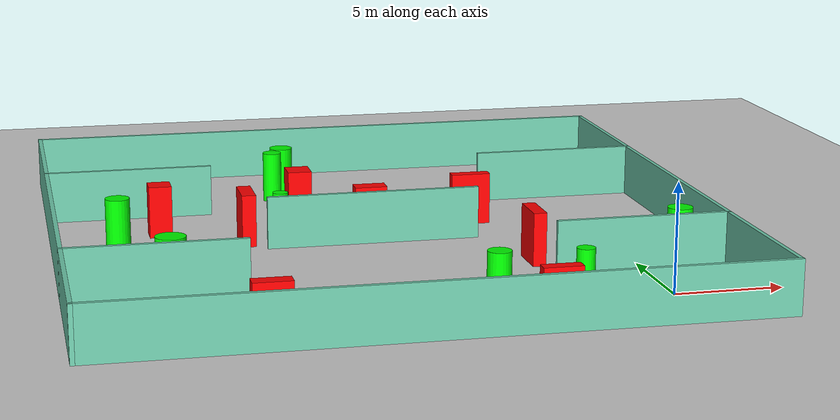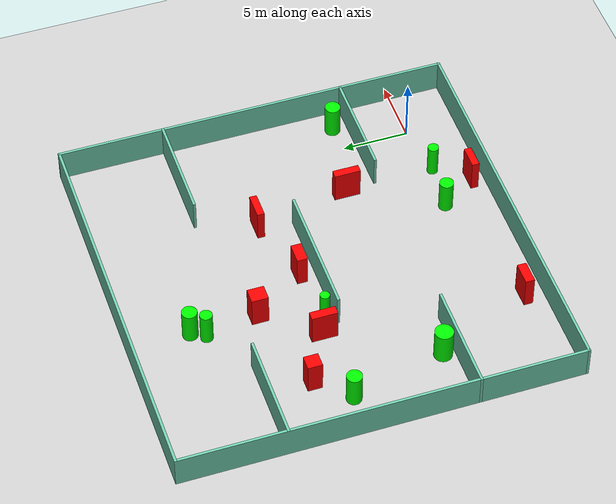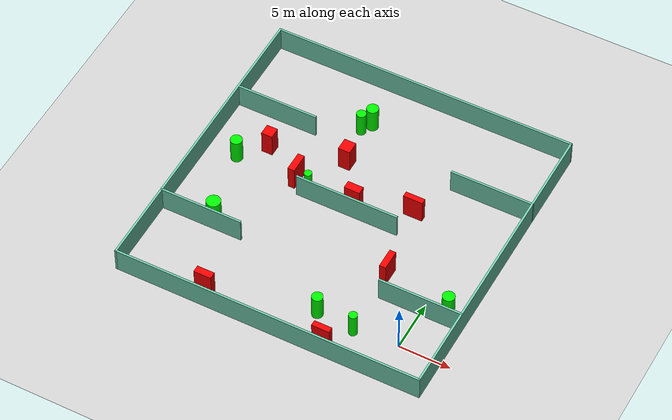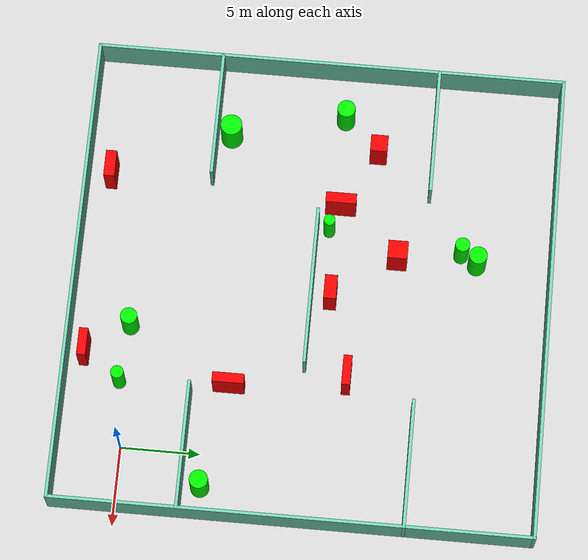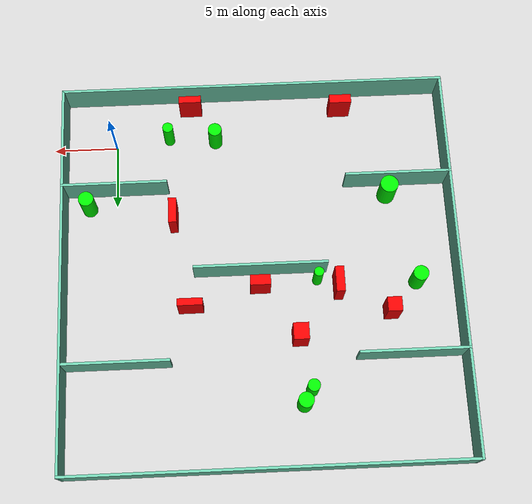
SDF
<sdf version="1.7">
 <world name="default">
  <light name="sun" type="directional">
   <pose>0 0 10 0 -0 0</pose>
   <diffuse>0.8 0.8 0.8 1</diffuse>
   <specular>0.2 0.2 0.2 1</specular>
   <attenuation>
    <range>1000</range>
    <constant>0.9</constant>
    <linear>0.01</linear>
    <quadratic>0.001</quadratic>
   </attenuation>
   <direction>-0.5 0.1 -0.9</direction>
   <spot><inner_angle>0</inner_angle><outer_angle>0</outer_angle><falloff>0</falloff></spot>
  </light>
  <model name="ground_plane">
   <static>1</static>
   <link name="link">
    <collision name="collision">
     <geometry><plane><normal>0 0 1</normal><size>100 100</size></plane></geometry>
     <surface>
      <contact><collide_bitmask>65535</collide_bitmask></contact>
      <friction><ode><mu>100</mu><mu2>50</mu2></ode></friction>
     </surface>
    </collision>
    <visual name="visual">
     <cast_shadows>0</cast_shadows>
     <geometry><plane><normal>0 0 1</normal><size>100 100</size></plane></geometry>
     <material>
      <script><uri>file://media/materials/scripts/gazebo.material</uri><name>Gazebo/Grey</name></script>
     </material>
    </visual>
   </link>
  </model>
  <gravity>0 0 -9.8</gravity>
  <magnetic_field>6e-06 2.3e-05 -4.2e-05</magnetic_field>
  <atmosphere type="adiabatic"/>
  <physics type="ode">
   <max_step_size>0.001</max_step_size>
   <real_time_factor>1</real_time_factor>
   <real_time_update_rate>1000</real_time_update_rate>
  </physics>
  <scene><ambient>0.4 0.4 0.4 1</ambient><background>0.7 0.7 0.7 1</background><shadows>1</shadows></scene>
  <spherical_coordinates>
   <surface_model>EARTH_WGS84</surface_model>
   <latitude_deg>0</latitude_deg>
   <longitude_deg>0</longitude_deg>
   <elevation>0</elevation>
   <heading_deg>0</heading_deg>
  </spherical_coordinates>
  <model name="my_base_walls">
   <link name="Wall_10">
    <collision name="Wall_10_Collision">
     <geometry><box><size>8.2 0.2 2.5</size></box></geometry>
     <pose>0 0 1.25 0 -0 0</pose>
    </collision>
    <visual name="Wall_10_Visual">
     <pose>0 0 1.25 0 -0 0</pose>
     <geometry><box><size>8.2 0.2 2.5</size></box></geometry>
     <material>
      <script><uri>file://media/materials/scripts/gazebo.material</uri><name>Gazebo/Grey</name></script>
      <ambient>0.435294 0.796078 0.67451 1</ambient>
     </material>
     <meta><layer>0</layer></meta>
    </visual>
    <pose>-11 -7 0 0 -0 0</pose>
   </link>
   <link name="Wall_12">
    <collision name="Wall_12_Collision">
     <geometry><box><size>8.2 0.2 2.5</size></box></geometry>
     <pose>0 0 1.25 0 -0 0</pose>
    </collision>
    <visual name="Wall_12_Visual">
     <pose>0 0 1.25 0 -0 0</pose>
     <geometry><box><size>8.2 0.2 2.5</size></box></geometry>
     <material>
      <script><uri>file://media/materials/scripts/gazebo.material</uri><name>Gazebo/Grey</name></script>
      <ambient>0.435294 0.796078 0.67451 1</ambient>
     </material>
     <meta><layer>0</layer></meta>
    </visual>
    <pose>-11 7 0 0 -0 0</pose>
   </link>
   <link name="Wall_14">
    <collision name="Wall_14_Collision">
     <geometry><box><size>8.2 0.2 2.5</size></box></geometry>
     <pose>0 0 1.25 0 -0 0</pose>
    </collision>
    <visual name="Wall_14_Visual">
     <pose>0 0 1.25 0 -0 0</pose>
     <geometry><box><size>8.2 0.2 2.5</size></box></geometry>
     <material>
      <script><uri>file://media/materials/scripts/gazebo.material</uri><name>Gazebo/Grey</name></script>
      <ambient>0.435294 0.796078 0.67451 1</ambient>
     </material>
     <meta><layer>0</layer></meta>
    </visual>
    <pose>11 7 0 0 -0 3.14159</pose>
   </link>
   <link name="Wall_16">
    <collision name="Wall_16_Collision">
     <geometry><box><size>10.2 0.2 2.5</size></box></geometry>
     <pose>0 0 1.25 0 -0 0</pose>
    </collision>
    <visual name="Wall_16_Visual">
     <pose>0 0 1.25 0 -0 0</pose>
     <geometry><box><size>10.2 0.2 2.5</size></box></geometry>
     <material>
      <script><uri>file://media/materials/scripts/gazebo.material</uri><name>Gazebo/Grey</name></script>
      <ambient>0.435294 0.796078 0.67451 1</ambient>
     </material>
     <meta><layer>0</layer></meta>
    </visual>
    <pose>0 0 0 0 -0 3.14159</pose>
   </link>
   <link name="Wall_2">
    <collision name="Wall_2_Collision">
     <geometry><box><size>30.2 0.2 2.5</size></box></geometry>
     <pose>0 0 1.25 0 -0 0</pose>
    </collision>
    <visual name="Wall_2_Visual">
     <pose>0 0 1.25 0 -0 0</pose>
     <geometry><box><size>30.2 0.2 2.5</size></box></geometry>
     <material>
      <script><uri>file://media/materials/scripts/gazebo.material</uri><name>Gazebo/Grey</name></script>
      <ambient>0.435294 0.796078 0.67451 1</ambient>
     </material>
     <meta><layer>0</layer></meta>
    </visual>
    <pose>0 -15 0 0 -0 3.14159</pose>
   </link>
   <link name="Wall_3">
    <collision name="Wall_3_Collision">
     <geometry><box><size>30.2 0.2 2.5</size></box></geometry>
     <pose>0 0 1.25 0 -0 0</pose>
    </collision>
    <visual name="Wall_3_Visual">
     <pose>0 0 1.25 0 -0 0</pose>
     <geometry><box><size>30.2 0.2 2.5</size></box></geometry>
     <material>
      <script><uri>file://media/materials/scripts/gazebo.material</uri><name>Gazebo/Grey</name></script>
      <ambient>0.435294 0.796078 0.67451 1</ambient>
     </material>
     <meta><layer>0</layer></meta>
    </visual>
    <pose>-15 0 0 0 -0 1.5708</pose>
   </link>
   <link name="Wall_4">
    <collision name="Wall_4_Collision">
     <geometry><box><size>30.2 0.2 2.5</size></box></geometry>
     <pose>0 0 1.25 0 -0 0</pose>
    </collision>
    <visual name="Wall_4_Visual">
     <pose>0 0 1.25 0 -0 0</pose>
     <geometry><box><size>30.2 0.2 2.5</size></box></geometry>
     <material>
      <script><uri>file://media/materials/scripts/gazebo.material</uri><name>Gazebo/Grey</name></script>
      <ambient>0.435294 0.796078 0.67451 1</ambient>
     </material>
     <meta><layer>0</layer></meta>
    </visual>
    <pose>0 15 0 0 -0 0</pose>
   </link>
   <link name="Wall_6">
    <collision name="Wall_6_Collision">
     <geometry><box><size>30.2 0.2 2.5</size></box></geometry>
     <pose>0 0 1.25 0 -0 0</pose>
    </collision>
    <visual name="Wall_6_Visual">
     <pose>0 0 1.25 0 -0 0</pose>
     <geometry><box><size>30.2 0.2 2.5</size></box></geometry>
     <material>
      <script><uri>file://media/materials/scripts/gazebo.material</uri><name>Gazebo/Grey</name></script>
      <ambient>0.435294 0.796078 0.67451 1</ambient>
     </material>
     <meta><layer>0</layer></meta>
    </visual>
    <pose>15 0 0 0 -0 1.5708</pose>
   </link>
   <link name="Wall_8">
    <collision name="Wall_8_Collision">
     <geometry><box><size>8.2 0.2 2.5</size></box></geometry>
     <pose>0 0 1.25 0 -0 0</pose>
    </collision>
    <visual name="Wall_8_Visual">
     <pose>0 0 1.25 0 -0 0</pose>
     <geometry><box><size>8.2 0.2 2.5</size></box></geometry>
     <material>
      <script><uri>file://media/materials/scripts/gazebo.material</uri><name>Gazebo/Grey</name></script>
      <ambient>0.435294 0.796078 0.67451 1</ambient>
     </material>
     <meta><layer>0</layer></meta>
    </visual>
    <pose>11 -7 0 0 -0 3.14159</pose>
   </link>
   <static>1</static>
   <pose>-11 11 0 0 -0 0</pose>
  </model>
  <model name="cylinder1">
   <static>1</static>
   <link name="link">
    <inertial>
     <mass>1</mass>
     <inertia><ixx>0.5</ixx><ixy>0</ixy><ixz>0</ixz><iyy>0.5</iyy><iyz>0</iyz><izz>1</izz></inertia>
    </inertial>
    <collision name="collision">
     <geometry><cylinder><radius>0.5773225314749852</radius><length>2.5</length></cylinder></geometry>
    </collision>
    <visual name="visual">
     <geometry><cylinder><radius>0.5773225314749852</radius><length>2.5</length></cylinder></geometry>
     <material>
      <ambient>0 1 0 1</ambient>
      <diffuse>0 1 0 1</diffuse>
      <specular>0.1 0.1 0.1 1</specular>
      <emissive>0 0 0 0</emissive>
     </material>
    </visual>
   </link>
   <pose>-22.973979296802355 12.217746791188876 1.25 0 0 0</pose>
  </model>
  <model name="cylinder2">
   <static>1</static>
   <link name="link">
    <inertial>
     <mass>1</mass>
     <inertia><ixx>0.5</ixx><ixy>0</ixy><ixz>0</ixz><iyy>0.5</iyy><iyz>0</iyz><izz>1</izz></inertia>
    </inertial>
    <collision name="collision">
     <geometry><cylinder><radius>0.3649905188209511</radius><length>2.5</length></cylinder></geometry>
    </collision>
    <visual name="visual">
     <geometry><cylinder><radius>0.3649905188209511</radius><length>2.5</length></cylinder></geometry>
     <material>
      <ambient>0 1 0 1</ambient>
      <diffuse>0 1 0 1</diffuse>
      <specular>0.1 0.1 0.1 1</specular>
      <emissive>0 0 0 0</emissive>
     </material>
    </visual>
   </link>
   <pose>-15.35326486355281 11.778638628260074 1.25 0 0 0</pose>
  </model>
  <model name="cylinder3">
   <static>1</static>
   <link name="link">
    <inertial>
     <mass>1</mass>
     <inertia><ixx>0.5</ixx><ixy>0</ixy><ixz>0</ixz><iyy>0.5</iyy><iyz>0</iyz><izz>1</izz></inertia>
    </inertial>
    <collision name="collision">
     <geometry><cylinder><radius>0.5765608909277584</radius><length>2.5</length></cylinder></geometry>
    </collision>
    <visual name="visual">
     <geometry><cylinder><radius>0.5765608909277584</radius><length>2.5</length></cylinder></geometry>
     <material>
      <ambient>0 1 0 1</ambient>
      <diffuse>0 1 0 1</diffuse>
      <specular>0.1 0.1 0.1 1</specular>
      <emissive>0 0 0 0</emissive>
     </material>
    </visual>
   </link>
   <pose>-13.818989453989985 21.33197681968884 1.25 0 0 0</pose>
  </model>
  <model name="cylinder4">
   <static>1</static>
   <link name="link">
    <inertial>
     <mass>1</mass>
     <inertia><ixx>0.5</ixx><ixy>0</ixy><ixz>0</ixz><iyy>0.5</iyy><iyz>0</iyz><izz>1</izz></inertia>
    </inertial>
    <collision name="collision">
     <geometry><cylinder><radius>0.5851976871743723</radius><length>2.5</length></cylinder></geometry>
    </collision>
    <visual name="visual">
     <geometry><cylinder><radius>0.5851976871743723</radius><length>2.5</length></cylinder></geometry>
     <material>
      <ambient>0 1 0 1</ambient>
      <diffuse>0 1 0 1</diffuse>
      <specular>0.1 0.1 0.1 1</specular>
      <emissive>0 0 0 0</emissive>
     </material>
    </visual>
   </link>
   <pose>2.1424937031238116 5.2048836982047355 1.25 0 0 0</pose>
  </model>
  <model name="cylinder5">
   <static>1</static>
   <link name="link">
    <inertial>
     <mass>1</mass>
     <inertia><ixx>0.5</ixx><ixy>0</ixy><ixz>0</ixz><iyy>0.5</iyy><iyz>0</iyz><izz>1</izz></inertia>
    </inertial>
    <collision name="collision">
     <geometry><cylinder><radius>0.5318371913061319</radius><length>2.5</length></cylinder></geometry>
    </collision>
    <visual name="visual">
     <geometry><cylinder><radius>0.5318371913061319</radius><length>2.5</length></cylinder></geometry>
     <material>
      <ambient>0 1 0 1</ambient>
      <diffuse>0 1 0 1</diffuse>
      <specular>0.1 0.1 0.1 1</specular>
      <emissive>0 0 0 0</emissive>
     </material>
    </visual>
   </link>
   <pose>-7.92480972370846 -0.19977507544243256 1.25 0 0 0</pose>
  </model>
  <model name="cylinder6">
   <static>1</static>
   <link name="link">
    <inertial>
     <mass>1</mass>
     <inertia><ixx>0.5</ixx><ixy>0</ixy><ixz>0</ixz><iyy>0.5</iyy><iyz>0</iyz><izz>1</izz></inertia>
    </inertial>
    <collision name="collision">
     <geometry><cylinder><radius>0.6921198067512278</radius><length>2.5</length></cylinder></geometry>
    </collision>
    <visual name="visual">
     <geometry><cylinder><radius>0.6921198067512278</radius><length>2.5</length></cylinder></geometry>
     <material>
      <ambient>0 1 0 1</ambient>
      <diffuse>0 1 0 1</diffuse>
      <specular>0.1 0.1 0.1 1</specular>
      <emissive>0 0 0 0</emissive>
     </material>
    </visual>
   </link>
   <pose>-21.23176220202445 4.961924770810578 1.25 0 0 0</pose>
  </model>
  <model name="cylinder7">
   <static>1</static>
   <link name="link">
    <inertial>
     <mass>1</mass>
     <inertia><ixx>0.5</ixx><ixy>0</ixy><ixz>0</ixz><iyy>0.5</iyy><iyz>0</iyz><izz>1</izz></inertia>
    </inertial>
    <collision name="collision">
     <geometry><cylinder><radius>0.4083557483229873</radius><length>2.5</length></cylinder></geometry>
    </collision>
    <visual name="visual">
     <geometry><cylinder><radius>0.4083557483229873</radius><length>2.5</length></cylinder></geometry>
     <material>
      <ambient>0 1 0 1</ambient>
      <diffuse>0 1 0 1</diffuse>
      <specular>0.1 0.1 0.1 1</specular>
      <emissive>0 0 0 0</emissive>
     </material>
    </visual>
   </link>
   <pose>-4.226666066483483 -0.5283179252213608 1.25 0 0 0</pose>
  </model>
  <model name="cylinder8">
   <static>1</static>
   <link name="link">
    <inertial>
     <mass>1</mass>
     <inertia><ixx>0.5</ixx><ixy>0</ixy><ixz>0</ixz><iyy>0.5</iyy><iyz>0</iyz><izz>1</izz></inertia>
    </inertial>
    <collision name="collision">
     <geometry><cylinder><radius>0.46622138254235723</radius><length>2.5</length></cylinder></geometry>
    </collision>
    <visual name="visual">
     <geometry><cylinder><radius>0.46622138254235723</radius><length>2.5</length></cylinder></geometry>
     <material>
      <ambient>0 1 0 1</ambient>
      <diffuse>0 1 0 1</diffuse>
      <specular>0.1 0.1 0.1 1</specular>
      <emissive>0 0 0 0</emissive>
     </material>
    </visual>
   </link>
   <pose>-14.438502189207643 20.297264394170394 1.25 0 0 0</pose>
  </model>
  <model name="box1">
   <static>1</static>
   <link name="link">
    <inertial>
     <mass>1</mass>
     <inertia><ixx>0.083</ixx><ixy>0</ixy><ixz>0</ixz><iyy>0.083</iyy><iyz>0</iyz><izz>0.083</izz></inertia>
    </inertial>
    <collision name="collision">
     <geometry><box><size>0.6662413666235676 1.9490515047684316 2.5</size></box></geometry>
    </collision>
    <visual name="visual">
     <geometry><box><size>0.6662413666235676 1.9490515047684316 2.5</size></box></geometry>
     <material>
      <ambient>1 0 0 1</ambient>
      <diffuse>1 0 0 1</diffuse>
      <specular>0.1 0.1 0.1 1</specular>
      <emissive>0 0 0 0</emissive>
     </material>
    </visual>
    <sensor name="my_contact" type="contact">
     <contact><collision>box_collision</collision><topic>__default_topic__</topic></contact>
    </sensor>
   </link>
   <pose>-16.896239052912875 12.393035829917654 1.25 0 0 0</pose>
  </model>
  <model name="box2">
   <static>1</static>
   <link name="link">
    <inertial>
     <mass>1</mass>
     <inertia><ixx>0.083</ixx><ixy>0</ixy><ixz>0</ixz><iyy>0.083</iyy><iyz>0</iyz><izz>0.083</izz></inertia>
    </inertial>
    <collision name="collision">
     <geometry><box><size>1.1656500695045298 1.2619382443166398 2.5</size></box></geometry>
    </collision>
    <visual name="visual">
     <geometry><box><size>1.1656500695045298 1.2619382443166398 2.5</size></box></geometry>
     <material>
      <ambient>1 0 0 1</ambient>
      <diffuse>1 0 0 1</diffuse>
      <specular>0.1 0.1 0.1 1</specular>
      <emissive>0 0 0 0</emissive>
     </material>
    </visual>
    <sensor name="my_contact" type="contact">
     <contact><collision>box_collision</collision><topic>__default_topic__</topic></contact>
    </sensor>
   </link>
   <pose>-13.757014787602971 16.2579403045633 1.25 0 0 0</pose>
  </model>
  <model name="box3">
   <static>1</static>
   <link name="link">
    <inertial>
     <mass>1</mass>
     <inertia><ixx>0.083</ixx><ixy>0</ixy><ixz>0</ixz><iyy>0.083</iyy><iyz>0</iyz><izz>0.083</izz></inertia>
    </inertial>
    <collision name="collision">
     <geometry><box><size>1.904906626797703 0.5464230497202298 2.5</size></box></geometry>
    </collision>
    <visual name="visual">
     <geometry><box><size>1.904906626797703 0.5464230497202298 2.5</size></box></geometry>
     <material>
      <ambient>1 0 0 1</ambient>
      <diffuse>1 0 0 1</diffuse>
      <specular>0.1 0.1 0.1 1</specular>
      <emissive>0 0 0 0</emissive>
     </material>
    </visual>
    <sensor name="my_contact" type="contact">
     <contact><collision>box_collision</collision><topic>__default_topic__</topic></contact>
    </sensor>
   </link>
   <pose>-5.616720100687253 13.700186849058191 1.25 0 0 0</pose>
  </model>
  <model name="box4">
   <static>1</static>
   <link name="link">
    <inertial>
     <mass>1</mass>
     <inertia><ixx>0.083</ixx><ixy>0</ixy><ixz>0</ixz><iyy>0.083</iyy><iyz>0</iyz><izz>0.083</izz></inertia>
    </inertial>
    <collision name="collision">
     <geometry><box><size>1.7062261884312155 0.6918367087110122 2.5</size></box></geometry>
    </collision>
    <visual name="visual">
     <geometry><box><size>1.7062261884312155 0.6918367087110122 2.5</size></box></geometry>
     <material>
      <ambient>1 0 0 1</ambient>
      <diffuse>1 0 0 1</diffuse>
      <specular>0.1 0.1 0.1 1</specular>
      <emissive>0 0 0 0</emissive>
     </material>
    </visual>
    <sensor name="my_contact" type="contact">
     <contact><collision>box_collision</collision><topic>__default_topic__</topic></contact>
    </sensor>
   </link>
   <pose>-17.95093323959277 -2.4756448005059517 1.25 0 0 0</pose>
  </model>
  <model name="box5">
   <static>1</static>
   <link name="link">
    <inertial>
     <mass>1</mass>
     <inertia><ixx>0.083</ixx><ixy>0</ixy><ixz>0</ixz><iyy>0.083</iyy><iyz>0</iyz><izz>0.083</izz></inertia>
    </inertial>
    <collision name="collision">
     <geometry><box><size>1.5432003741689895 0.793677673947105 2.5</size></box></geometry>
    </collision>
    <visual name="visual">
     <geometry><box><size>1.5432003741689895 0.793677673947105 2.5</size></box></geometry>
     <material>
      <ambient>1 0 0 1</ambient>
      <diffuse>1 0 0 1</diffuse>
      <specular>0.1 0.1 0.1 1</specular>
      <emissive>0 0 0 0</emissive>
     </material>
    </visual>
    <sensor name="my_contact" type="contact">
     <contact><collision>box_collision</collision><topic>__default_topic__</topic></contact>
    </sensor>
   </link>
   <pose>-10.939976238447025 12.226612340057518 1.25 0 0 0</pose>
  </model>
  <model name="box6">
   <static>1</static>
   <link name="link">
    <inertial>
     <mass>1</mass>
     <inertia><ixx>0.083</ixx><ixy>0</ixy><ixz>0</ixz><iyy>0.083</iyy><iyz>0</iyz><izz>0.083</izz></inertia>
    </inertial>
    <collision name="collision">
     <geometry><box><size>1.0877930691521176 1.0944088489336474 2.5</size></box></geometry>
    </collision>
    <visual name="visual">
     <geometry><box><size>1.0877930691521176 1.0944088489336474 2.5</size></box></geometry>
     <material>
      <ambient>1 0 0 1</ambient>
      <diffuse>1 0 0 1</diffuse>
      <specular>0.1 0.1 0.1 1</specular>
      <emissive>0 0 0 0</emissive>
     </material>
    </visual>
    <sensor name="my_contact" type="contact">
     <contact><collision>box_collision</collision><topic>__default_topic__</topic></contact>
    </sensor>
   </link>
   <pose>-20.803268396307146 14.508668141689302 1.25 0 0 0</pose>
  </model>
  <model name="box7">
   <static>1</static>
   <link name="link">
    <inertial>
     <mass>1</mass>
     <inertia><ixx>0.083</ixx><ixy>0</ixy><ixz>0</ixz><iyy>0.083</iyy><iyz>0</iyz><izz>0.083</izz></inertia>
    </inertial>
    <collision name="collision">
     <geometry><box><size>1.7439160624077323 0.562658240777176 2.5</size></box></geometry>
    </collision>
    <visual name="visual">
     <geometry><box><size>1.7439160624077323 0.562658240777176 2.5</size></box></geometry>
     <material>
      <ambient>1 0 0 1</ambient>
      <diffuse>1 0 0 1</diffuse>
      <specular>0.1 0.1 0.1 1</specular>
      <emissive>0 0 0 0</emissive>
     </material>
    </visual>
    <sensor name="my_contact" type="contact">
     <contact><collision>box_collision</collision><topic>__default_topic__</topic></contact>
    </sensor>
   </link>
   <pose>-6.017931109229494 -2.902694351588368 1.25 0 0 0</pose>
  </model>
  <model name="box8">
   <static>1</static>
   <link name="link">
    <inertial>
     <mass>1</mass>
     <inertia><ixx>0.083</ixx><ixy>0</ixy><ixz>0</ixz><iyy>0.083</iyy><iyz>0</iyz><izz>0.083</izz></inertia>
    </inertial>
    <collision name="collision">
     <geometry><box><size>0.6171929259177309 1.9840456512690876 2.5</size></box></geometry>
    </collision>
    <visual name="visual">
     <geometry><box><size>0.6171929259177309 1.9840456512690876 2.5</size></box></geometry>
     <material>
      <ambient>1 0 0 1</ambient>
      <diffuse>1 0 0 1</diffuse>
      <specular>0.1 0.1 0.1 1</specular>
      <emissive>0 0 0 0</emissive>
     </material>
    </visual>
    <sensor name="my_contact" type="contact">
     <contact><collision>box_collision</collision><topic>__default_topic__</topic></contact>
    </sensor>
   </link>
   <pose>-4.461487694402891 6.3843777000796695 1.25 0 0 0</pose>
  </model>
 </world>
</sdf>
